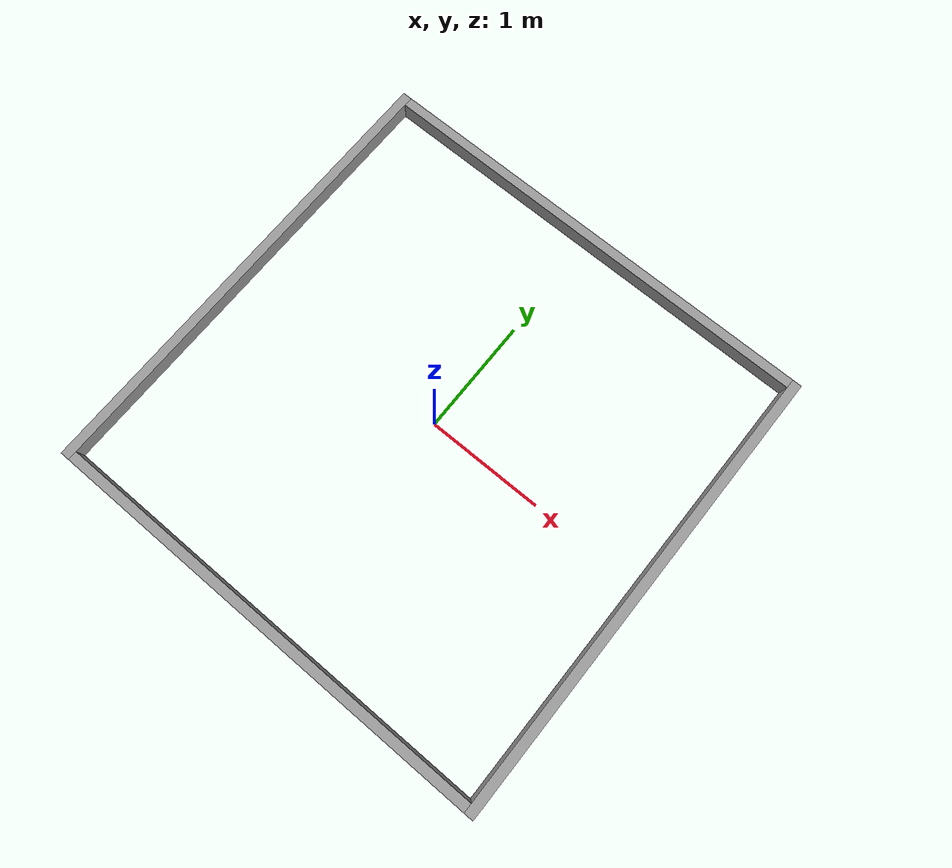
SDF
<?xml version='1.0'?>
<sdf version='1.6'>
  <model name='cr5_arena_walls'>
    <pose frame=''>0 0 0.08 0 0 0</pose>
    <link name='Right_Wall'>
      <collision name='Right_Wall_Collision'>
        <geometry>
          <box>
            <size>3.84 0.08 0.16</size>
          </box>
        </geometry>
      </collision>
      <visual name='Right_Wall_Visual'>
        <geometry>
          <box>
            <size>3.84 0.08 0.16</size>
          </box>
        </geometry>
        <material>
          <script>
            <uri>file://media/materials/scripts/gazebo.material</uri>
            <name>Gazebo/Grey</name>
          </script>
          <ambient>1 1 1 1</ambient>
        </material>
      </visual>
      <density>4000.0</density>
      <pose frame=''>0 1.96 0 0 0 0</pose>
    </link>
    <link name='Back_Wall'>
      <collision name='Back_Wall_Collision'>
        <geometry>
          <box>
            <size>0.08 4.00 0.16</size>
          </box>
        </geometry>
      </collision>
      <visual name='Back_Wall_Visual'>
        <geometry>
          <box>
            <size>0.08 4.00 0.16</size>
          </box>
        </geometry>
        <material>
          <script>
            <uri>file://media/materials/scripts/gazebo.material</uri>
            <name>Gazebo/Grey</name>
          </script>
          <ambient>1 1 1 1</ambient>
        </material>
      </visual>
      <density>4000.0</density>
      <pose frame=''>-1.96 0 0 0 0 0</pose>
    </link>
    <link name='Left_Wall'>
      <collision name='Left_Wall_Collision'>
        <geometry>
          <box>
            <size>3.84 0.08 0.16</size>
          </box>
        </geometry>
      </collision>
      <visual name='Left_Wall_Visual'>
        <geometry>
          <box>
            <size>3.84 0.08 0.16</size>
          </box>
        </geometry>
        <material>
          <script>
            <uri>file://media/materials/scripts/gazebo.material</uri>
            <name>Gazebo/Grey</name>
          </script>
          <ambient>1 1 1 1</ambient>
        </material>
      </visual>
      <density>4000.0</density>
      <pose frame=''>0 -1.96 0 0 0 0</pose>
    </link>
    <link name='Front_Wall'>
      <collision name='Front_Wall_Collision'>
        <geometry>
          <box>
            <size>0.08 4.00 0.16</size>
          </box>
        </geometry>
      </collision>
      <visual name='Front_Wall_Visual'>
        <geometry>
          <box>
            <size>0.08 4.00 0.16</size>
          </box>
        </geometry>
        <material>
          <script>
            <uri>file://media/materials/scripts/gazebo.material</uri>
            <name>Gazebo/Grey</name>
          </script>
          <ambient>1 1 1 1</ambient>
        </material>
      </visual>
      <density>4000.0</density>
      <pose frame=''>1.96 0 0 0 0 0</pose>
    </link>
    <static>false</static>
  </model>
</sdf>
